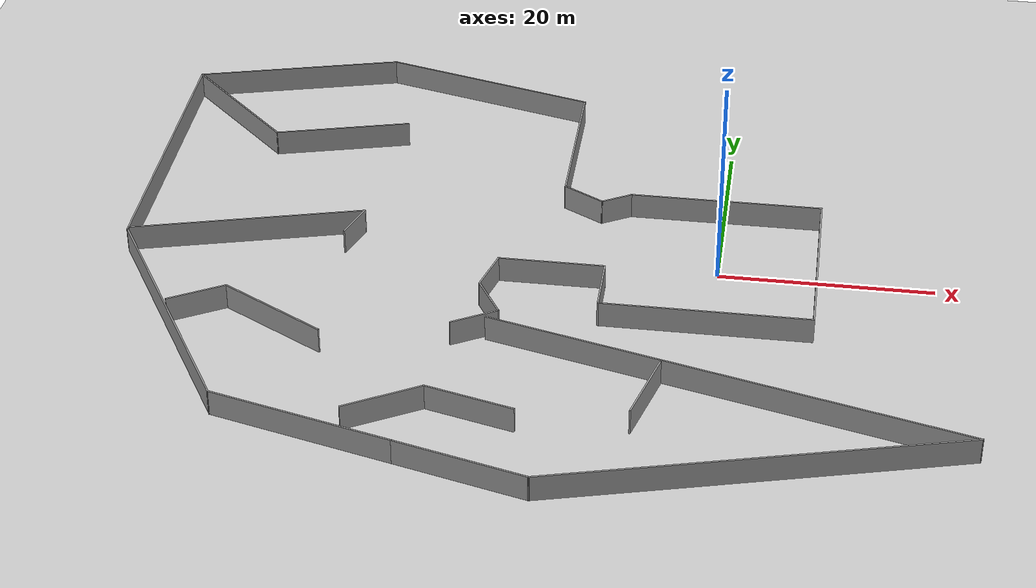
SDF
<sdf version="1.7">
 <world name="default">
  <light name="sun" type="directional">
   <pose>0 0 10 0 -0 0</pose>
   <diffuse>0.8 0.8 0.8 1</diffuse>
   <specular>0.2 0.2 0.2 1</specular>
   <attenuation>
    <range>1000</range>
    <constant>0.9</constant>
    <linear>0.01</linear>
    <quadratic>0.001</quadratic>
   </attenuation>
   <direction>-0.5 0.1 -0.9</direction>
   <spot><inner_angle>0</inner_angle><outer_angle>0</outer_angle><falloff>0</falloff></spot>
  </light>
  <model name="ground_plane">
   <static>1</static>
   <link name="link">
    <collision name="collision">
     <geometry><plane><normal>0 0 1</normal><size>100 100</size></plane></geometry>
     <surface><friction><ode><mu>100</mu><mu2>50</mu2></ode></friction></surface>
    </collision>
    <visual name="visual">
     <cast_shadows>0</cast_shadows>
     <geometry><plane><normal>0 0 1</normal><size>100 100</size></plane></geometry>
     <material>
      <script><uri>file://media/materials/scripts/gazebo.material</uri><name>Gazebo/Grey</name></script>
     </material>
    </visual>
   </link>
  </model>
  <gravity>0 0 -9.8</gravity>
  <magnetic_field>6e-06 2.3e-05 -4.2e-05</magnetic_field>
  <atmosphere type="adiabatic"/>
  <physics type="ode">
   <max_step_size>0.001</max_step_size>
   <real_time_factor>1</real_time_factor>
   <real_time_update_rate>1000</real_time_update_rate>
  </physics>
  <scene><ambient>0.4 0.4 0.4 1</ambient><background>0.7 0.7 0.7 1</background><shadows>1</shadows></scene>
  <audio><device>default</device></audio>
  <spherical_coordinates>
   <surface_model>EARTH_WGS84</surface_model>
   <latitude_deg>0</latitude_deg>
   <longitude_deg>0</longitude_deg>
   <elevation>0</elevation>
   <heading_deg>0</heading_deg>
  </spherical_coordinates>
  <model name="Untitled9">
   <pose>-15.7651 -1.59365 0 0 -0 0</pose>
   <link name="Wall_10">
    <collision name="Wall_10_Collision">
     <geometry><box><size>4.5 0.15 2.5</size></box></geometry>
     <pose>0 0 1.25 0 -0 0</pose>
    </collision>
    <visual name="Wall_10_Visual">
     <pose>0 0 1.25 0 -0 0</pose>
     <geometry><box><size>4.5 0.15 2.5</size></box></geometry>
     <material>
      <script><uri>file://media/materials/scripts/gazebo.material</uri><name>Gazebo/Grey</name></script>
      <ambient>1 1 1 1</ambient>
     </material>
     <meta><layer>0</layer></meta>
    </visual>
    <pose>-4.86518 -3.79099 0 0 -0 -1.8326</pose>
   </link>
   <link name="Wall_11">
    <collision name="Wall_11_Collision">
     <geometry><box><size>4.75 0.15 2.5</size></box></geometry>
     <pose>0 0 1.25 0 -0 0</pose>
    </collision>
    <visual name="Wall_11_Visual">
     <pose>0 0 1.25 0 -0 0</pose>
     <geometry><box><size>4.75 0.15 2.5</size></box></geometry>
     <material>
      <script><uri>file://media/materials/scripts/gazebo.material</uri><name>Gazebo/Grey</name></script>
      <ambient>1 1 1 1</ambient>
     </material>
     <meta><layer>0</layer></meta>
    </visual>
    <pose>-4.27811 -7.88373 0 0 -0 -1.0472</pose>
   </link>
   <link name="Wall_12">
    <collision name="Wall_12_Collision">
     <geometry><box><size>4.75 0.15 2.5</size></box></geometry>
     <pose>0 0 1.25 0 -0 0</pose>
    </collision>
    <visual name="Wall_12_Visual">
     <pose>0 0 1.25 0 -0 0</pose>
     <geometry><box><size>4.75 0.15 2.5</size></box></geometry>
     <material>
      <script><uri>file://media/materials/scripts/gazebo.material</uri><name>Gazebo/Grey</name></script>
      <ambient>1 1 1 1</ambient>
     </material>
     <meta><layer>0</layer></meta>
    </visual>
    <pose>-5.11997 -11.0256 0 0 -0 -2.61799</pose>
   </link>
   <link name="Wall_14">
    <collision name="Wall_14_Collision">
     <geometry><box><size>3.25 0.15 2.5</size></box></geometry>
     <pose>0 0 1.25 0 -0 0</pose>
    </collision>
    <visual name="Wall_14_Visual">
     <pose>0 0 1.25 0 -0 0</pose>
     <geometry><box><size>3.25 0.15 2.5</size></box></geometry>
     <material>
      <script><uri>file://media/materials/scripts/gazebo.material</uri><name>Gazebo/Grey</name></script>
      <ambient>1 1 1 1</ambient>
     </material>
     <meta><layer>0</layer></meta>
    </visual>
    <pose>5.45541 9.7849 0 0 -0 -2.61799</pose>
   </link>
   <link name="Wall_15">
    <collision name="Wall_15_Collision">
     <geometry><box><size>4.5 0.15 2.5</size></box></geometry>
     <pose>0 0 1.25 0 -0 0</pose>
    </collision>
    <visual name="Wall_15_Visual">
     <pose>0 0 1.25 0 -0 0</pose>
     <geometry><box><size>4.5 0.15 2.5</size></box></geometry>
     <material>
      <script><uri>file://media/materials/scripts/gazebo.material</uri><name>Gazebo/Grey</name></script>
      <ambient>1 1 1 1</ambient>
     </material>
     <meta><layer>0</layer></meta>
    </visual>
    <pose>2.22947 10.0974 0 0 -0 2.61799</pose>
   </link>
   <link name="Wall_16">
    <collision name="Wall_16_Collision">
     <geometry><box><size>16 0.15 2.5</size></box></geometry>
     <pose>0 0 1.25 0 -0 0</pose>
    </collision>
    <visual name="Wall_16_Visual">
     <pose>0 0 1.25 0 -0 0</pose>
     <geometry><box><size>16 0.15 2.5</size></box></geometry>
     <material>
      <script><uri>file://media/materials/scripts/gazebo.material</uri><name>Gazebo/Grey</name></script>
      <ambient>1 1 1 1</ambient>
     </material>
     <meta><layer>0</layer></meta>
    </visual>
    <pose>0.345862 19.1099 0 0 -0 1.5708</pose>
   </link>
   <link name="Wall_17">
    <collision name="Wall_17_Collision">
     <geometry><box><size>21.25 0.15 2.5</size></box></geometry>
     <pose>0 0 1.25 0 -0 0</pose>
    </collision>
    <visual name="Wall_17_Visual">
     <pose>0 0 1.25 0 -0 0</pose>
     <geometry><box><size>21.25 0.15 2.5</size></box></geometry>
     <material>
      <script><uri>file://media/materials/scripts/gazebo.material</uri><name>Gazebo/Grey</name></script>
      <ambient>1 1 1 1</ambient>
     </material>
     <meta><layer>0</layer></meta>
    </visual>
    <pose>-9.84466 29.7654 0 0 -0 2.87979</pose>
   </link>
   <link name="Wall_18">
    <collision name="Wall_18_Collision">
     <geometry><box><size>20.25 0.15 2.5</size></box></geometry>
     <pose>0 0 1.25 0 -0 0</pose>
    </collision>
    <visual name="Wall_18_Visual">
     <pose>0 0 1.25 0 -0 0</pose>
     <geometry><box><size>20.25 0.15 2.5</size></box></geometry>
     <material>
      <script><uri>file://media/materials/scripts/gazebo.material</uri><name>Gazebo/Grey</name></script>
      <ambient>1 1 1 1</ambient>
     </material>
     <meta><layer>0</layer></meta>
    </visual>
    <pose>-29.7427 29.8949 0 0 -0 -2.87979</pose>
   </link>
   <link name="Wall_19">
    <collision name="Wall_19_Collision">
     <geometry><box><size>29 0.15 2.5</size></box></geometry>
     <pose>0 0 1.25 0 -0 0</pose>
    </collision>
    <visual name="Wall_19_Visual">
     <pose>0 0 1.25 0 -0 0</pose>
     <geometry><box><size>29 0.15 2.5</size></box></geometry>
     <material>
      <script><uri>file://media/materials/scripts/gazebo.material</uri><name>Gazebo/Grey</name></script>
      <ambient>1 1 1 1</ambient>
     </material>
     <meta><layer>0</layer></meta>
    </visual>
    <pose>-39.4503 12.8687 0 0 -0 -1.5708</pose>
   </link>
   <link name="Wall_20">
    <collision name="Wall_20_Collision">
     <geometry><box><size>27 0.15 2.5</size></box></geometry>
     <pose>0 0 1.25 0 -0 0</pose>
    </collision>
    <visual name="Wall_20_Visual">
     <pose>0 0 1.25 0 -0 0</pose>
     <geometry><box><size>27 0.15 2.5</size></box></geometry>
     <material>
      <script><uri>file://media/materials/scripts/gazebo.material</uri><name>Gazebo/Grey</name></script>
      <ambient>1 1 1 1</ambient>
     </material>
     <meta><layer>0</layer></meta>
    </visual>
    <pose>-32.7378 -13.1827 0 0 -0 -1.0472</pose>
   </link>
   <link name="Wall_21">
    <collision name="Wall_21_Collision">
     <geometry><box><size>17.5 0.15 2.5</size></box></geometry>
     <pose>0 0 1.25 0 -0 0</pose>
    </collision>
    <visual name="Wall_21_Visual">
     <pose>0 0 1.25 0 -0 0</pose>
     <geometry><box><size>17.5 0.15 2.5</size></box></geometry>
     <material>
      <script><uri>file://media/materials/scripts/gazebo.material</uri><name>Gazebo/Grey</name></script>
      <ambient>1 1 1 1</ambient>
     </material>
     <meta><layer>0</layer></meta>
    </visual>
    <pose>-17.6459 -27.0543 0 0 -0 -0.261799</pose>
   </link>
   <link name="Wall_22">
    <collision name="Wall_22_Collision">
     <geometry><box><size>12.5 0.15 2.5</size></box></geometry>
     <pose>0 0 1.25 0 -0 0</pose>
    </collision>
    <visual name="Wall_22_Visual">
     <pose>0 0 1.25 0 -0 0</pose>
     <geometry><box><size>12.5 0.15 2.5</size></box></geometry>
     <material>
      <script><uri>file://media/materials/scripts/gazebo.material</uri><name>Gazebo/Grey</name></script>
      <ambient>1 1 1 1</ambient>
     </material>
     <meta><layer>0</layer></meta>
    </visual>
    <pose>-3.30188 -30.8978 0 0 -0 -0.261799</pose>
   </link>
   <link name="Wall_23">
    <collision name="Wall_23_Collision">
     <geometry><box><size>38.25 0.15 2.5</size></box></geometry>
     <pose>0 0 1.25 0 -0 0</pose>
    </collision>
    <visual name="Wall_23_Visual">
     <pose>0 0 1.25 0 -0 0</pose>
     <geometry><box><size>38.25 0.15 2.5</size></box></geometry>
     <material>
      <script><uri>file://media/materials/scripts/gazebo.material</uri><name>Gazebo/Grey</name></script>
      <ambient>1 1 1 1</ambient>
     </material>
     <meta><layer>0</layer></meta>
    </visual>
    <pose>21.0636 -27.5655 0 0 -0 0.261799</pose>
   </link>
   <link name="Wall_24">
    <collision name="Wall_24_Collision">
     <geometry><box><size>45.25 0.15 2.5</size></box></geometry>
     <pose>0 0 1.25 0 -0 0</pose>
    </collision>
    <visual name="Wall_24_Visual">
     <pose>0 0 1.25 0 -0 0</pose>
     <geometry><box><size>45.25 0.15 2.5</size></box></geometry>
     <material>
      <script><uri>file://media/materials/scripts/gazebo.material</uri><name>Gazebo/Grey</name></script>
      <ambient>1 1 1 1</ambient>
     </material>
     <meta><layer>0</layer></meta>
    </visual>
    <pose>17.6829 -16.7986 0 0 -0 2.87979</pose>
   </link>
   <link name="Wall_26">
    <collision name="Wall_26_Collision">
     <geometry><box><size>14.5 0.15 2.5</size></box></geometry>
     <pose>0 0 1.25 0 -0 0</pose>
    </collision>
    <visual name="Wall_26_Visual">
     <pose>0 0 1.25 0 -0 0</pose>
     <geometry><box><size>14.5 0.15 2.5</size></box></geometry>
     <material>
      <script><uri>file://media/materials/scripts/gazebo.material</uri><name>Gazebo/Grey</name></script>
      <ambient>1 1 1 1</ambient>
     </material>
     <meta><layer>0</layer></meta>
    </visual>
    <pose>-34.3768 22.2202 0 0 -0 -0.785398</pose>
   </link>
   <link name="Wall_27">
    <collision name="Wall_27_Collision">
     <geometry><box><size>13.25 0.15 2.5</size></box></geometry>
     <pose>0 0 1.25 0 -0 0</pose>
    </collision>
    <visual name="Wall_27_Visual">
     <pose>0 0 1.25 0 -0 0</pose>
     <geometry><box><size>13.25 0.15 2.5</size></box></geometry>
     <material>
      <script><uri>file://media/materials/scripts/gazebo.material</uri><name>Gazebo/Grey</name></script>
      <ambient>1 1 1 1</ambient>
     </material>
     <meta><layer>0</layer></meta>
    </visual>
    <pose>-22.9765 18.842 0 0 -0 0.261799</pose>
   </link>
   <link name="Wall_29">
    <collision name="Wall_29_Collision">
     <geometry><box><size>22.25 0.15 2.5</size></box></geometry>
     <pose>0 0 1.25 0 -0 0</pose>
    </collision>
    <visual name="Wall_29_Visual">
     <pose>0 0 1.25 0 -0 0</pose>
     <geometry><box><size>22.25 0.15 2.5</size></box></geometry>
     <material>
      <script><uri>file://media/materials/scripts/gazebo.material</uri><name>Gazebo/Grey</name></script>
      <ambient>1 1 1 1</ambient>
     </material>
     <meta><layer>0</layer></meta>
    </visual>
    <pose>-28.6888 1.60186 0 0 -0 0.261799</pose>
   </link>
   <link name="Wall_30">
    <collision name="Wall_30_Collision">
     <geometry><box><size>3.96027 0.15 2.5</size></box></geometry>
     <pose>0 0 1.25 0 -0 0</pose>
    </collision>
    <visual name="Wall_30_Visual">
     <pose>0 0 1.25 0 -0 0</pose>
     <geometry><box><size>3.96027 0.15 2.5</size></box></geometry>
     <material>
      <script><uri>file://media/materials/scripts/gazebo.material</uri><name>Gazebo/Grey</name></script>
      <ambient>1 1 1 1</ambient>
     </material>
     <meta><layer>0</layer></meta>
    </visual>
    <pose>-18.6332 2.65966 0 0 -0 -1.90111</pose>
   </link>
   <link name="Wall_33">
    <collision name="Wall_33_Collision">
     <geometry><box><size>5.75 0.15 2.5</size></box></geometry>
     <pose>0 0 1.25 0 -0 0</pose>
    </collision>
    <visual name="Wall_33_Visual">
     <pose>0 0 1.25 0 -0 0</pose>
     <geometry><box><size>5.75 0.15 2.5</size></box></geometry>
     <material>
      <script><uri>file://media/materials/scripts/gazebo.material</uri><name>Gazebo/Grey</name></script>
      <ambient>1 1 1 1</ambient>
     </material>
     <meta><layer>0</layer></meta>
    </visual>
    <pose>-30.5687 -10.6639 0 0 -0 0.523599</pose>
   </link>
   <link name="Wall_34">
    <collision name="Wall_34_Collision">
     <geometry><box><size>11.25 0.15 2.5</size></box></geometry>
     <pose>0 0 1.25 0 -0 0</pose>
    </collision>
    <visual name="Wall_34_Visual">
     <pose>0 0 1.25 0 -0 0</pose>
     <geometry><box><size>11.25 0.15 2.5</size></box></geometry>
     <material>
      <script><uri>file://media/materials/scripts/gazebo.material</uri><name>Gazebo/Grey</name></script>
      <ambient>1 1 1 1</ambient>
     </material>
     <meta><layer>0</layer></meta>
    </visual>
    <pose>-23.3374 -12.0389 0 0 -0 -0.523599</pose>
   </link>
   <link name="Wall_36">
    <collision name="Wall_36_Collision">
     <geometry><box><size>7.75 0.15 2.5</size></box></geometry>
     <pose>0 0 1.25 0 -0 0</pose>
    </collision>
    <visual name="Wall_36_Visual">
     <pose>0 0 1.25 0 -0 0</pose>
     <geometry><box><size>7.75 0.15 2.5</size></box></geometry>
     <material>
      <script><uri>file://media/materials/scripts/gazebo.material</uri><name>Gazebo/Grey</name></script>
      <ambient>1 1 1 1</ambient>
     </material>
     <meta><layer>0</layer></meta>
    </visual>
    <pose>-11.1544 -23.4813 0 0 -0 0.523599</pose>
   </link>
   <link name="Wall_37">
    <collision name="Wall_37_Collision">
     <geometry><box><size>8.5 0.15 2.5</size></box></geometry>
     <pose>0 0 1.25 0 -0 0</pose>
    </collision>
    <visual name="Wall_37_Visual">
     <pose>0 0 1.25 0 -0 0</pose>
     <geometry><box><size>8.5 0.15 2.5</size></box></geometry>
     <material>
      <script><uri>file://media/materials/scripts/gazebo.material</uri><name>Gazebo/Grey</name></script>
      <ambient>1 1 1 1</ambient>
     </material>
     <meta><layer>0</layer></meta>
    </visual>
    <pose>-3.83074 -22.6619 0 0 -0 -0.261799</pose>
   </link>
   <link name="Wall_39">
    <collision name="Wall_39_Collision">
     <geometry><box><size>7.5 0.15 2.5</size></box></geometry>
     <pose>0 0 1.25 0 -0 0</pose>
    </collision>
    <visual name="Wall_39_Visual">
     <pose>0 0 1.25 0 -0 0</pose>
     <geometry><box><size>7.5 0.15 2.5</size></box></geometry>
     <material>
      <script><uri>file://media/materials/scripts/gazebo.material</uri><name>Gazebo/Grey</name></script>
      <ambient>1 1 1 1</ambient>
     </material>
     <meta><layer>0</layer></meta>
    </visual>
    <pose>10.9537 -19.1112 0 0 -0 -1.8326</pose>
   </link>
   <link name="Wall_5">
    <collision name="Wall_5_Collision">
     <geometry><box><size>18.25 0.15 2.5</size></box></geometry>
     <pose>0 0 1.25 0 -0 0</pose>
    </collision>
    <visual name="Wall_5_Visual">
     <pose>0 0 1.25 0 -0 0</pose>
     <geometry><box><size>18.25 0.15 2.5</size></box></geometry>
     <material>
      <script><uri>file://media/materials/scripts/gazebo.material</uri><name>Gazebo/Grey</name></script>
      <ambient>1 1 1 1</ambient>
     </material>
     <meta><layer>0</layer></meta>
    </visual>
    <pose>15.8478 10.5599 0 0 -0 0</pose>
   </link>
   <link name="Wall_6">
    <collision name="Wall_6_Collision">
     <geometry><box><size>18.25 0.15 2.5</size></box></geometry>
     <pose>0 0 1.25 0 -0 0</pose>
    </collision>
    <visual name="Wall_6_Visual">
     <pose>0 0 1.25 0 -0 0</pose>
     <geometry><box><size>18.25 0.15 2.5</size></box></geometry>
     <material>
      <script><uri>file://media/materials/scripts/gazebo.material</uri><name>Gazebo/Grey</name></script>
      <ambient>1 1 1 1</ambient>
     </material>
     <meta><layer>0</layer></meta>
    </visual>
    <pose>24.8978 1.5099 0 0 -0 -1.5708</pose>
   </link>
   <link name="Wall_7">
    <collision name="Wall_7_Collision">
     <geometry><box><size>19.5 0.15 2.5</size></box></geometry>
     <pose>0 0 1.25 0 -0 0</pose>
    </collision>
    <visual name="Wall_7_Visual">
     <pose>0 0 1.25 0 -0 0</pose>
     <geometry><box><size>19.5 0.15 2.5</size></box></geometry>
     <material>
      <script><uri>file://media/materials/scripts/gazebo.material</uri><name>Gazebo/Grey</name></script>
      <ambient>1 1 1 1</ambient>
     </material>
     <meta><layer>0</layer></meta>
    </visual>
    <pose>15.2228 -7.5401 0 0 -0 3.14159</pose>
   </link>
   <link name="Wall_8">
    <collision name="Wall_8_Collision">
     <geometry><box><size>6 0.15 2.5</size></box></geometry>
     <pose>0 0 1.25 0 -0 0</pose>
    </collision>
    <visual name="Wall_8_Visual">
     <pose>0 0 1.25 0 -0 0</pose>
     <geometry><box><size>6 0.15 2.5</size></box></geometry>
     <material>
      <script><uri>file://media/materials/scripts/gazebo.material</uri><name>Gazebo/Grey</name></script>
      <ambient>1 1 1 1</ambient>
     </material>
     <meta><layer>0</layer></meta>
    </visual>
    <pose>5.54775 -4.6151 0 0 -0 1.5708</pose>
   </link>
   <link name="Wall_9">
    <collision name="Wall_9_Collision">
     <geometry><box><size>10 0.15 2.5</size></box></geometry>
     <pose>0 0 1.25 0 -0 0</pose>
    </collision>
    <visual name="Wall_9_Visual">
     <pose>0 0 1.25 0 -0 0</pose>
     <geometry><box><size>10 0.15 2.5</size></box></geometry>
     <material>
      <script><uri>file://media/materials/scripts/gazebo.material</uri><name>Gazebo/Grey</name></script>
      <ambient>1 1 1 1</ambient>
     </material>
     <meta><layer>0</layer></meta>
    </visual>
    <pose>0.622751 -1.6901 0 0 -0 3.14159</pose>
   </link>
   <static>1</static>
  </model>
 </world>
</sdf>
